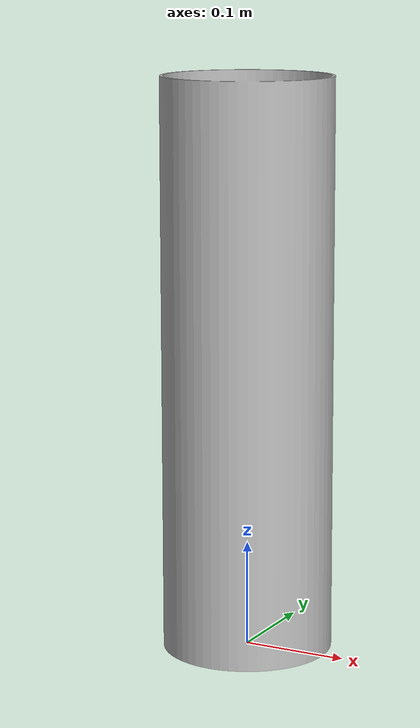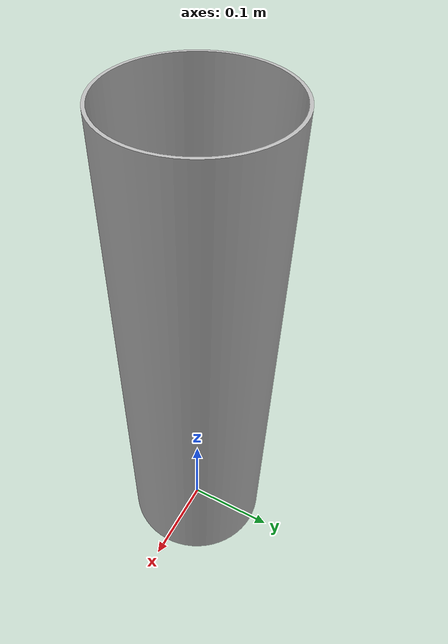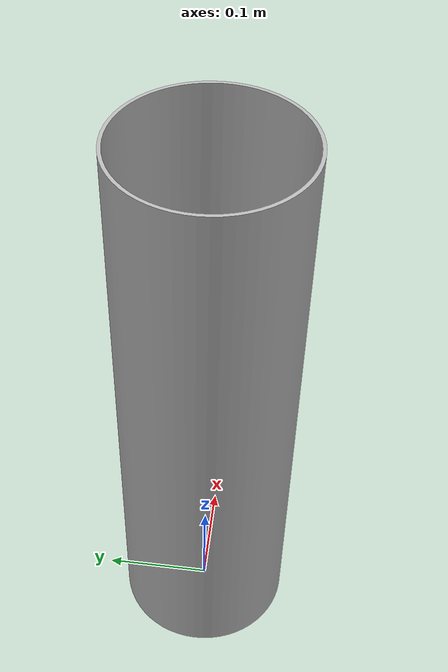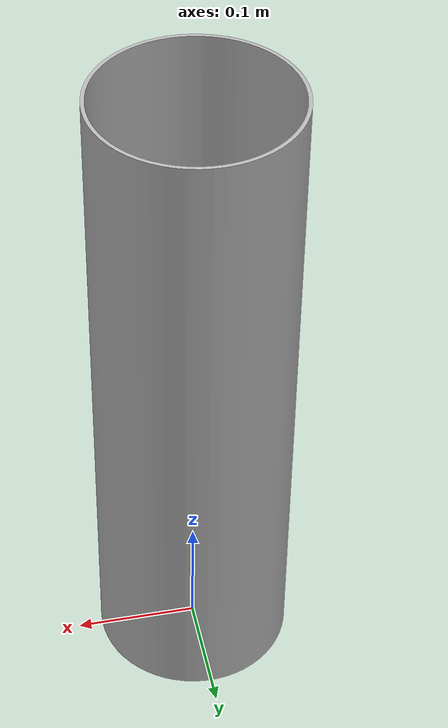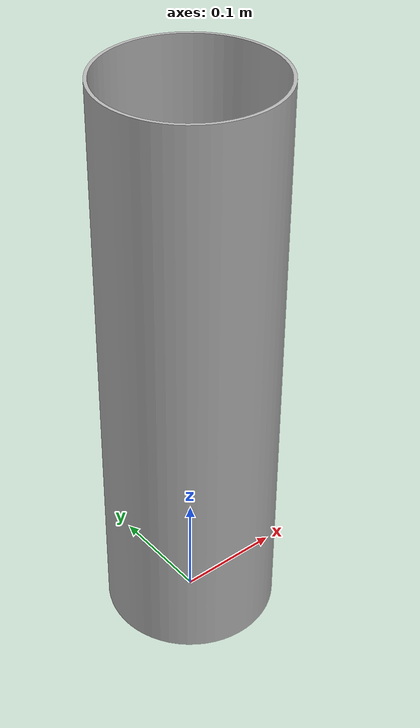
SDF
<?xml version='1.0'?>
<sdf version='1.6'>
  <model name='cylinder'>
    <link name='cylinder_link'>
      <inertial>
        <mass>1</mass>
        <inertia>
          <ixx>0.145833</ixx>
          <ixy>0</ixy>
          <ixz>0</ixz>
          <iyy>0.145833</iyy>
          <iyz>0</iyz>
          <izz>0.125</izz>
        </inertia>
        <pose frame=''>0 0 0.27 0 0 0</pose>
      </inertial>
      <self_collide>0</self_collide>
      <kinematic>0</kinematic>
      <gravity>1</gravity>
      <visual name='visual'>
        <geometry>
          <mesh>
            <uri>model://meshes/visual/cylinder.stl</uri>
          </mesh>
        </geometry>
        <pose frame=''>0 0 0 0 0 0</pose>
        <material name="grey"/>
      </visual>
      <collision name='collision'>
        <geometry>
          <cylinder>
            <radius>0.08</radius>
            <length>0.484939</length>
          </cylinder>
        </geometry>
        <pose frame=''>0 0 0.27 0 -0 0</pose>
      </collision>
    </link>
    <static>0</static>
    <allow_auto_disable>1</allow_auto_disable>
  </model>
</sdf>
